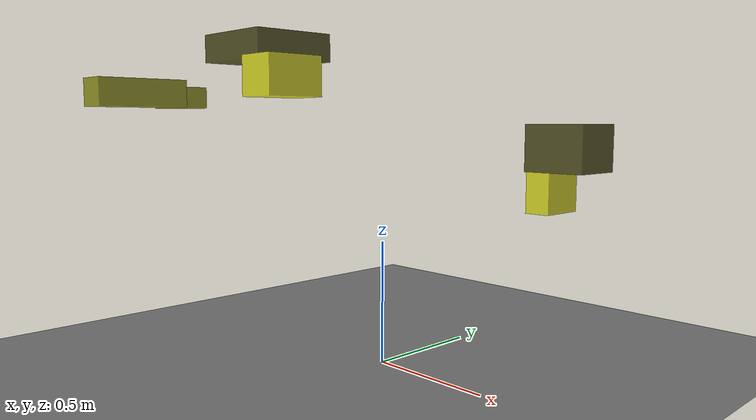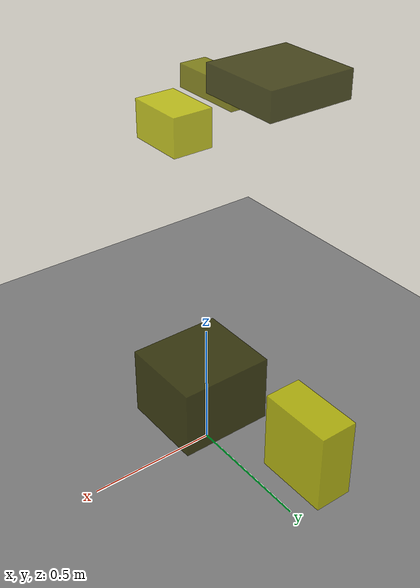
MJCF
<?xml version="1.0"?>
<mujoco model="obstacle_scene">
  <compiler angle="radian" coordinate="local"/>
  <option timestep="0.001" gravity="0 0 -9.81"/>

  <asset>
    <material name="obstacle_mat" rgba="0.8 0.8 0.0 0.8"/>
    <material name="ground_mat" rgba="0.5 0.5 0.5 1"/>
  </asset>

  <worldbody>
    <!-- Ground plane -->
    <geom name="ground" type="plane" size="3 3 0.1" material="ground_mat"/>

    <!-- Obstacles -->
    <body name="obstacle_0" pos="0.466603 0.603960 0.875175">
      <geom name="obs_0" type="box" size="0.130781 0.119588 0.097572" rgba="0.2 0.2 0.0 0.8"/>
    </body>
    <body name="obstacle_1" pos="-0.755525 -0.469266 1.083352">
      <geom name="obs_1" type="box" size="0.083403 0.075724 0.043699" rgba="0.5 0.5 0.0 0.8"/>
    </body>
    <body name="obstacle_2" pos="-0.143783 -0.387754 1.151480">
      <geom name="obs_2" type="box" size="0.084301 0.121360 0.077046" rgba="0.8 0.8 0.0 0.8"/>
    </body>
    <body name="obstacle_3" pos="-0.484960 -0.208027 1.288781">
      <geom name="obs_3" type="box" size="0.190906 0.183715 0.058199" rgba="0.2 0.2 0.0 0.8"/>
    </body>
    <body name="obstacle_4" pos="-0.613094 -0.739043 1.093209">
      <geom name="obs_4" type="box" size="0.067174 0.179687 0.053653" rgba="0.5 0.5 0.0 0.8"/>
    </body>
    <body name="obstacle_5" pos="0.256178 0.818085 0.699906">
      <geom name="obs_5" type="box" size="0.058083 0.114010 0.125975" rgba="0.8 0.8 0.0 0.8"/>
    </body>
  </worldbody>
</mujoco>
